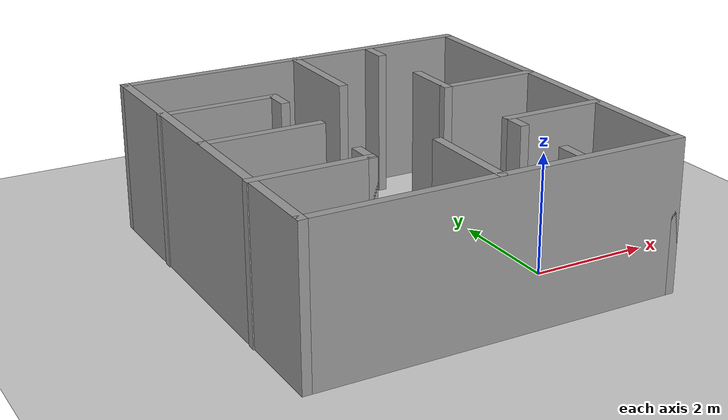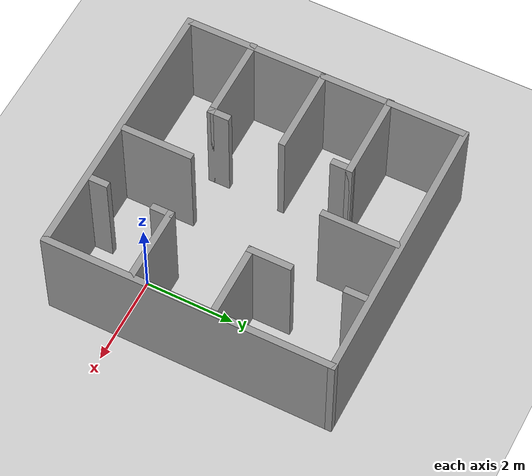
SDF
<sdf version="1.7">
 <world name="default">
  <light name="sun" type="directional">
   <pose>0 0 10 0 -0 0</pose>
   <diffuse>0.8 0.8 0.8 1</diffuse>
   <specular>0.2 0.2 0.2 1</specular>
   <attenuation>
    <range>1000</range>
    <constant>0.9</constant>
    <linear>0.01</linear>
    <quadratic>0.001</quadratic>
   </attenuation>
   <direction>-0.5 0.1 -0.9</direction>
   <spot><inner_angle>0</inner_angle><outer_angle>0</outer_angle><falloff>0</falloff></spot>
  </light>
  <model name="ground_plane">
   <static>1</static>
   <link name="link">
    <collision name="collision">
     <geometry><plane><normal>0 0 1</normal><size>100 100</size></plane></geometry>
     <surface>
      <contact><collide_bitmask>65535</collide_bitmask></contact>
      <friction><ode><mu>100</mu><mu2>50</mu2></ode></friction>
     </surface>
    </collision>
    <visual name="visual">
     <cast_shadows>0</cast_shadows>
     <geometry><plane><normal>0 0 1</normal><size>100 100</size></plane></geometry>
     <material>
      <script><uri>file://media/materials/scripts/gazebo.material</uri><name>Gazebo/Grey</name></script>
     </material>
    </visual>
   </link>
  </model>
  <gravity>0 0 -9.8</gravity>
  <magnetic_field>6e-06 2.3e-05 -4.2e-05</magnetic_field>
  <atmosphere type="adiabatic"/>
  <physics type="ode">
   <max_step_size>0.003</max_step_size>
   <real_time_factor>1</real_time_factor>
   <real_time_update_rate>1000</real_time_update_rate>
  </physics>
  <scene><ambient>0.4 0.4 0.4 1</ambient><background>0.7 0.7 0.7 1</background><shadows>1</shadows></scene>
  <spherical_coordinates>
   <surface_model>EARTH_WGS84</surface_model>
   <latitude_deg>0</latitude_deg>
   <longitude_deg>0</longitude_deg>
   <elevation>0</elevation>
   <heading_deg>0</heading_deg>
  </spherical_coordinates>
  <model name="laber4_2_4_">
   <pose>-1.76308 1.68712 0 0 -0 0</pose>
   <link name="Wall_15">
    <collision name="Wall_15_Collision">
     <geometry><box><size>1.75 0.15 2.5</size></box></geometry>
     <pose>0 0 1.25 0 -0 0</pose>
    </collision>
    <visual name="Wall_15_Visual">
     <pose>0 0 1.25 0 -0 0</pose>
     <geometry><box><size>1.75 0.15 2.5</size></box></geometry>
     <material>
      <script><uri>file://media/materials/scripts/gazebo.material</uri><name>Gazebo/Grey</name></script>
      <ambient>1 1 1 1</ambient>
     </material>
     <meta><layer>0</layer></meta>
    </visual>
    <pose>0.002016 2.28755 0 0 -0 -1.5708</pose>
   </link>
   <link name="Wall_17">
    <collision name="Wall_17_Collision">
     <geometry><box><size>1.75 0.15 2.5</size></box></geometry>
     <pose>0 0 1.25 0 -0 0</pose>
    </collision>
    <visual name="Wall_17_Visual">
     <pose>0 0 1.25 0 -0 0</pose>
     <geometry><box><size>1.75 0.15 2.5</size></box></geometry>
     <material>
      <script><uri>file://media/materials/scripts/gazebo.material</uri><name>Gazebo/Grey</name></script>
      <ambient>1 1 1 1</ambient>
     </material>
     <meta><layer>0</layer></meta>
    </visual>
    <pose>-0.015474 -2.37389 0 0 -0 1.5708</pose>
   </link>
   <link name="Wall_19">
    <collision name="Wall_19_Collision">
     <geometry><box><size>2 0.15 2.5</size></box></geometry>
     <pose>0 0 1.25 0 -0 0</pose>
    </collision>
    <visual name="Wall_19_Visual">
     <pose>0 0 1.25 0 -0 0</pose>
     <geometry><box><size>2 0.15 2.5</size></box></geometry>
     <material>
      <script><uri>file://media/materials/scripts/gazebo.material</uri><name>Gazebo/Grey</name></script>
      <ambient>1 1 1 1</ambient>
     </material>
     <meta><layer>0</layer></meta>
    </visual>
    <pose>-2.13374 -1.68724 0 0 -0 0</pose>
   </link>
   <link name="Wall_2">
    <collision name="Wall_2_Collision">
     <geometry><box><size>6.5 0.15 2.5</size></box></geometry>
     <pose>0 0 1.25 0 -0 0</pose>
    </collision>
    <visual name="Wall_2_Visual">
     <pose>0 0 1.25 0 -0 0</pose>
     <geometry><box><size>6.5 0.15 2.5</size></box></geometry>
     <material>
      <script><uri>file://media/materials/scripts/gazebo.material</uri><name>Gazebo/Grey</name></script>
      <ambient>1 1 1 1</ambient>
     </material>
     <meta><layer>0</layer></meta>
    </visual>
    <pose>-3.04126 -0 0 0 -0 -1.5708</pose>
   </link>
   <link name="Wall_21">
    <collision name="Wall_21_Collision">
     <geometry><box><size>0.5 0.15 2.5</size></box></geometry>
     <pose>0 0 1.25 0 -0 0</pose>
    </collision>
    <visual name="Wall_21_Visual">
     <pose>0 0 1.25 0 -0 0</pose>
     <geometry><box><size>0.5 0.15 2.5</size></box></geometry>
     <material>
      <script><uri>file://media/materials/scripts/gazebo.material</uri><name>Gazebo/Grey</name></script>
      <ambient>1 1 1 1</ambient>
     </material>
     <meta><layer>0</layer></meta>
    </visual>
    <pose>-1.20874 -1.51224 0 0 -0 1.5708</pose>
   </link>
   <link name="Wall_24">
    <collision name="Wall_24_Collision">
     <geometry><box><size>2 0.15 2.5</size></box></geometry>
     <pose>0 0 1.25 0 -0 0</pose>
    </collision>
    <visual name="Wall_24_Visual">
     <pose>0 0 1.25 0 -0 0</pose>
     <geometry><box><size>2 0.15 2.5</size></box></geometry>
     <material>
      <script><uri>file://media/materials/scripts/gazebo.material</uri><name>Gazebo/Grey</name></script>
      <ambient>1 1 1 1</ambient>
     </material>
     <meta><layer>0</layer></meta>
    </visual>
    <pose>-2.13374 1.47846 0 0 -0 0</pose>
   </link>
   <link name="Wall_25">
    <collision name="Wall_25_Collision">
     <geometry><box><size>0.5 0.15 2.5</size></box></geometry>
     <pose>0 0 1.25 0 -0 0</pose>
    </collision>
    <visual name="Wall_25_Visual">
     <pose>0 0 1.25 0 -0 0</pose>
     <geometry><box><size>0.5 0.15 2.5</size></box></geometry>
     <material>
      <script><uri>file://media/materials/scripts/gazebo.material</uri><name>Gazebo/Grey</name></script>
      <ambient>1 1 1 1</ambient>
     </material>
     <meta><layer>0</layer></meta>
    </visual>
    <pose>-1.20874 1.30346 0 0 -0 -1.5708</pose>
   </link>
   <link name="Wall_27">
    <collision name="Wall_27_Collision">
     <geometry><box><size>2 0.15 2.5</size></box></geometry>
     <pose>0 0 1.25 0 -0 0</pose>
    </collision>
    <visual name="Wall_27_Visual">
     <pose>0 0 1.25 0 -0 0</pose>
     <geometry><box><size>2 0.15 2.5</size></box></geometry>
     <material>
      <script><uri>file://media/materials/scripts/gazebo.material</uri><name>Gazebo/Grey</name></script>
      <ambient>1 1 1 1</ambient>
     </material>
     <meta><layer>0</layer></meta>
    </visual>
    <pose>-2.09877 -0.025682 0 0 -0 0</pose>
   </link>
   <link name="Wall_29">
    <collision name="Wall_29_Collision">
     <geometry><box><size>0.5 0.15 2.5</size></box></geometry>
     <pose>0 0 1.25 0 -0 0</pose>
    </collision>
    <visual name="Wall_29_Visual">
     <pose>0 0 1.25 0 -0 0</pose>
     <geometry><box><size>0.5 0.15 2.5</size></box></geometry>
     <material>
      <script><uri>file://media/materials/scripts/gazebo.material</uri><name>Gazebo/Grey</name></script>
      <ambient>1 1 1 1</ambient>
     </material>
     <meta><layer>0</layer></meta>
    </visual>
    <pose>1.40122 2.86008 0 0 -0 -1.5708</pose>
   </link>
   <link name="Wall_3">
    <collision name="Wall_3_Collision">
     <geometry><box><size>6.25 0.15 2.5</size></box></geometry>
     <pose>0 0 1.25 0 -0 0</pose>
    </collision>
    <visual name="Wall_3_Visual">
     <pose>0 0 1.25 0 -0 0</pose>
     <geometry><box><size>6.25 0.15 2.5</size></box></geometry>
     <material>
      <script><uri>file://media/materials/scripts/gazebo.material</uri><name>Gazebo/Grey</name></script>
      <ambient>1 1 1 1</ambient>
     </material>
     <meta><layer>0</layer></meta>
    </visual>
    <pose>0.008745 -3.175 0 0 -0 0</pose>
   </link>
   <link name="Wall_31">
    <collision name="Wall_31_Collision">
     <geometry><box><size>0.5 0.15 2.5</size></box></geometry>
     <pose>0 0 1.25 0 -0 0</pose>
    </collision>
    <visual name="Wall_31_Visual">
     <pose>0 0 1.25 0 -0 0</pose>
     <geometry><box><size>0.5 0.15 2.5</size></box></geometry>
     <material>
      <script><uri>file://media/materials/scripts/gazebo.material</uri><name>Gazebo/Grey</name></script>
      <ambient>1 1 1 1</ambient>
     </material>
     <meta><layer>0</layer></meta>
    </visual>
    <pose>1.36624 -2.92893 0 0 -0 1.5708</pose>
   </link>
   <link name="Wall_33">
    <collision name="Wall_33_Collision">
     <geometry><box><size>1.75 0.15 2.5</size></box></geometry>
     <pose>0 0 1.25 0 -0 0</pose>
    </collision>
    <visual name="Wall_33_Visual">
     <pose>0 0 1.25 0 -0 0</pose>
     <geometry><box><size>1.75 0.15 2.5</size></box></geometry>
     <material>
      <script><uri>file://media/materials/scripts/gazebo.material</uri><name>Gazebo/Grey</name></script>
      <ambient>1 1 1 1</ambient>
     </material>
     <meta><layer>0</layer></meta>
    </visual>
    <pose>2.2278 0.568981 0 0 -0 3.14159</pose>
   </link>
   <link name="Wall_34">
    <collision name="Wall_34_Collision">
     <geometry><box><size>1 0.15 2.5</size></box></geometry>
     <pose>0 0 1.25 0 -0 0</pose>
    </collision>
    <visual name="Wall_34_Visual">
     <pose>0 0 1.25 0 -0 0</pose>
     <geometry><box><size>1 0.15 2.5</size></box></geometry>
     <material>
      <script><uri>file://media/materials/scripts/gazebo.material</uri><name>Gazebo/Grey</name></script>
      <ambient>1 1 1 1</ambient>
     </material>
     <meta><layer>0</layer></meta>
    </visual>
    <pose>1.4278 0.993981 0 0 -0 1.5708</pose>
   </link>
   <link name="Wall_37">
    <collision name="Wall_37_Collision">
     <geometry><box><size>1.75 0.15 2.5</size></box></geometry>
     <pose>0 0 1.25 0 -0 0</pose>
    </collision>
    <visual name="Wall_37_Visual">
     <pose>0 0 1.25 0 -0 0</pose>
     <geometry><box><size>1.75 0.15 2.5</size></box></geometry>
     <material>
      <script><uri>file://media/materials/scripts/gazebo.material</uri><name>Gazebo/Grey</name></script>
      <ambient>1 1 1 1</ambient>
     </material>
     <meta><layer>0</layer></meta>
    </visual>
    <pose>2.21031 -1.24999 0 0 -0 3.14159</pose>
   </link>
   <link name="Wall_38">
    <collision name="Wall_38_Collision">
     <geometry><box><size>0.5 0.15 2.5</size></box></geometry>
     <pose>0 0 1.25 0 -0 0</pose>
    </collision>
    <visual name="Wall_38_Visual">
     <pose>0 0 1.25 0 -0 0</pose>
     <geometry><box><size>0.5 0.15 2.5</size></box></geometry>
     <material>
      <script><uri>file://media/materials/scripts/gazebo.material</uri><name>Gazebo/Grey</name></script>
      <ambient>1 1 1 1</ambient>
     </material>
     <meta><layer>0</layer></meta>
    </visual>
    <pose>1.41031 -1.42499 0 0 -0 -1.5708</pose>
   </link>
   <link name="Wall_4">
    <collision name="Wall_4_Collision">
     <geometry><box><size>6.5 0.15 2.5</size></box></geometry>
     <pose>0 0 1.25 0 -0 0</pose>
    </collision>
    <visual name="Wall_4_Visual">
     <pose>0 0 1.25 0 -0 0</pose>
     <geometry><box><size>6.5 0.15 2.5</size></box></geometry>
     <material>
      <script><uri>file://media/materials/scripts/gazebo.material</uri><name>Gazebo/Grey</name></script>
      <ambient>1 1 1 1</ambient>
     </material>
     <meta><layer>0</layer></meta>
    </visual>
    <pose>3.05875 -0 0 0 -0 1.5708</pose>
   </link>
   <link name="Wall_5">
    <collision name="Wall_5_Collision">
     <geometry><box><size>6.25 0.15 2.5</size></box></geometry>
     <pose>0 0 1.25 0 -0 0</pose>
    </collision>
    <visual name="Wall_5_Visual">
     <pose>0 0 1.25 0 -0 0</pose>
     <geometry><box><size>6.25 0.15 2.5</size></box></geometry>
     <material>
      <script><uri>file://media/materials/scripts/gazebo.material</uri><name>Gazebo/Grey</name></script>
      <ambient>1 1 1 1</ambient>
     </material>
     <meta><layer>0</layer></meta>
    </visual>
    <pose>0.008745 3.175 0 0 -0 3.14159</pose>
   </link>
   <static>1</static>
  </model>
 </world>
</sdf>
